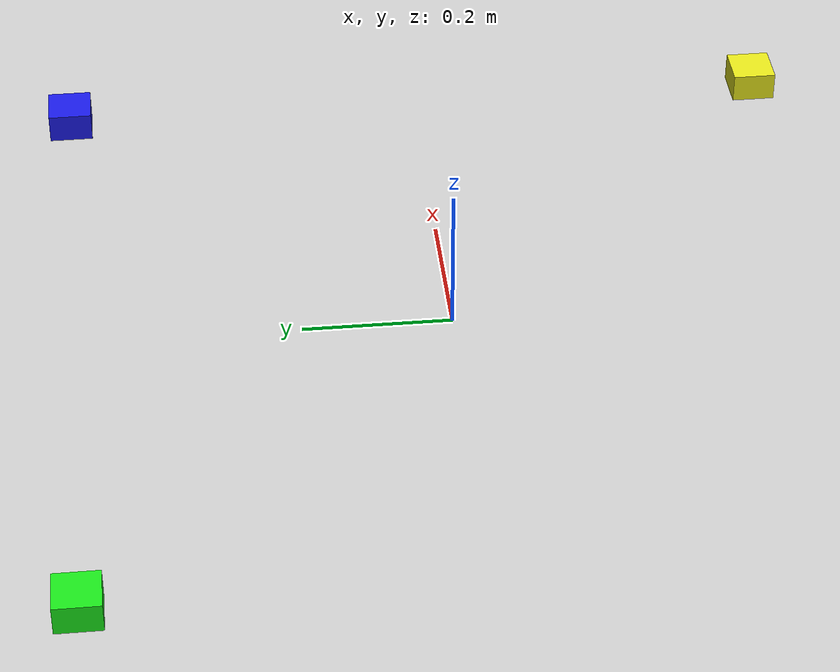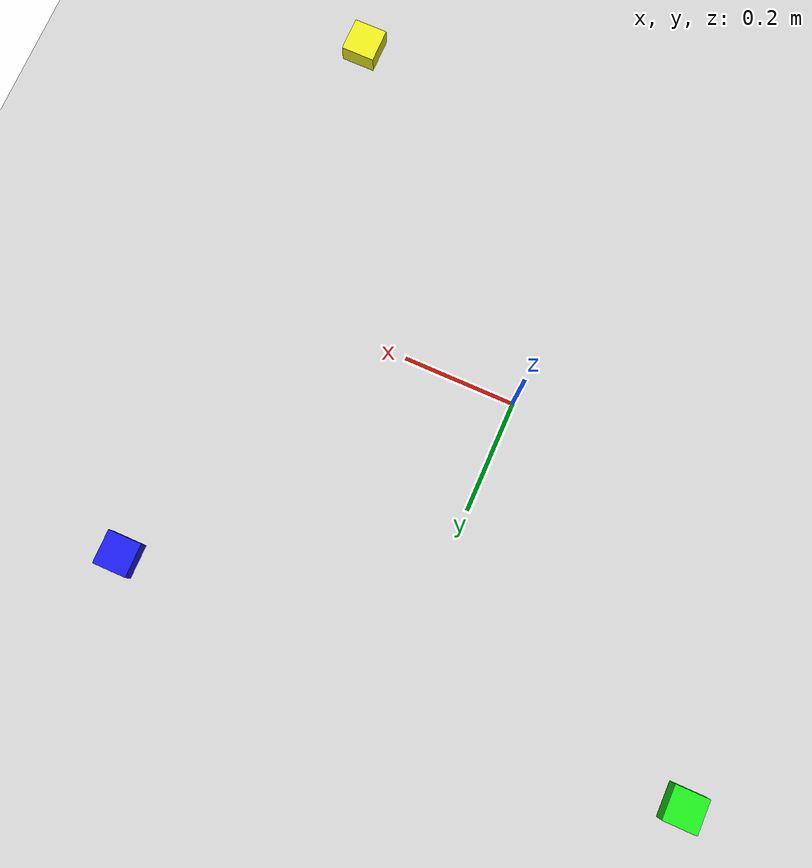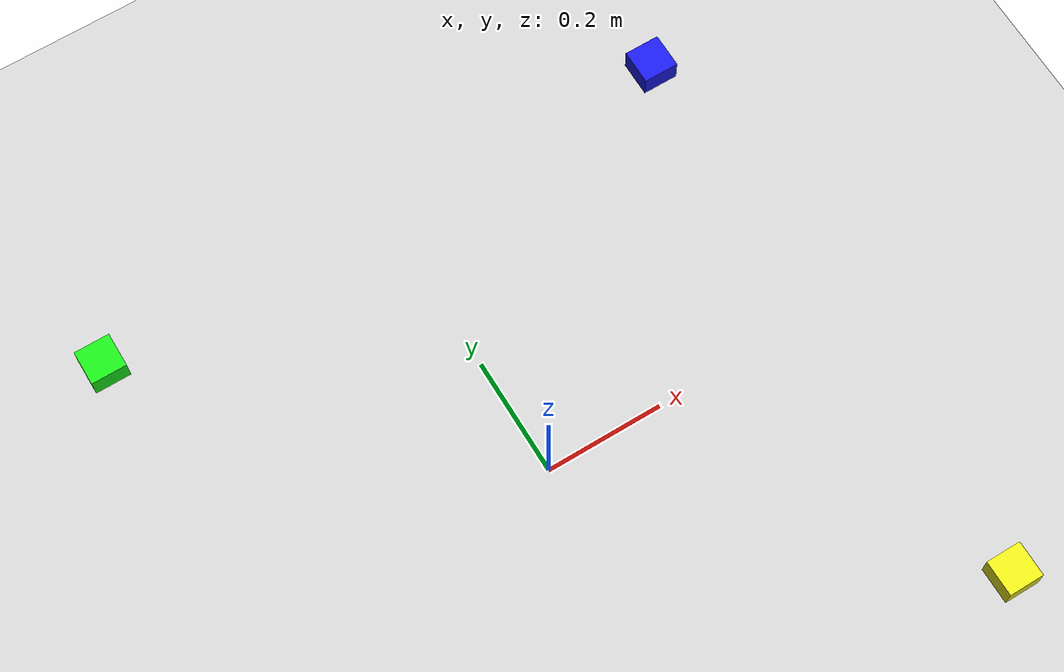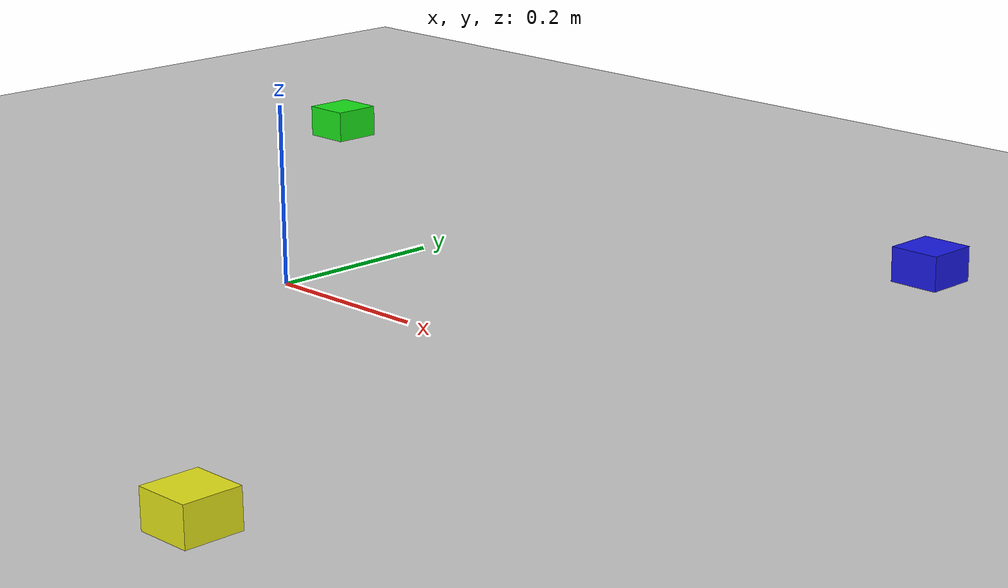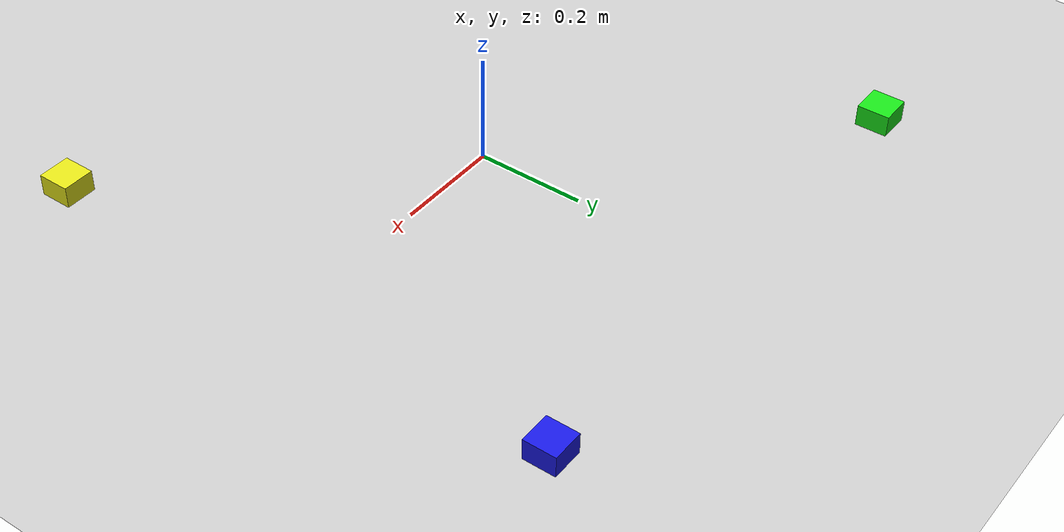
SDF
<?xml version="1.0" ?>
<sdf version="1.6">
  <world name="empty">
    <physics name="1ms" type="ignored">
      <max_step_size>0.001</max_step_size>
      <real_time_factor>1.0</real_time_factor>
    </physics>
    <plugin
      filename="gz-sim-physics-system"
      name="gz::sim::systems::Physics">
    </plugin>
    <plugin
      filename="gz-sim-user-commands-system"
      name="gz::sim::systems::UserCommands">
    </plugin>
    <plugin
      filename="gz-sim-scene-broadcaster-system"
      name="gz::sim::systems::SceneBroadcaster">
    </plugin>
    <plugin
      filename="gz-sim-contact-system"
      name="gz::sim::systems::Contact">
    </plugin>
    <plugin
      filename="gz-sim-sensors-system"
      name="gz::sim::systems::Sensors">
      <render_engine>ogre2</render_engine>
    </plugin>

    <light type="directional" name="sun">
      <cast_shadows>true</cast_shadows>
      <pose>0 0 10 0 0 0</pose>
      <diffuse>0.8 0.8 0.8 1</diffuse>
      <specular>0.2 0.2 0.2 1</specular>
      <attenuation>
        <range>1000</range>
        <constant>0.9</constant>
        <linear>0.01</linear>
        <quadratic>0.001</quadratic>
      </attenuation>
      <direction>-0.5 0.1 -0.9</direction>
    </light>

    <model name="ground_plane">
      <static>true</static>
      <link name="link">
        <collision name="collision">
          <geometry>
            <plane>
              <normal>0 0 1</normal>
              <size>100 100</size>
            </plane>
          </geometry>
        </collision>
        <visual name="visual">
          <geometry>
            <plane>
              <normal>0 0 1</normal>
              <size>100 100</size>
            </plane>
          </geometry>
          <material>
            <ambient>0.8 0.8 0.8 1</ambient>
            <diffuse>0.8 0.8 0.8 1</diffuse>
            <specular>0.8 0.8 0.8 1</specular>
          </material>
        </visual>
      </link>
    </model>

    <model name="calibration_marker_blue">
      <static>true</static>
      <pose>0.5 0.5 0.02 0 0 0</pose>
      <link name="link">
        <visual name="visual">
          <geometry>
            <box>
              <size>0.06 0.06 0.04</size>
            </box>
          </geometry>
          <material>
            <ambient>0.1 0.1 0.9 1</ambient>
            <diffuse>0.1 0.1 0.9 1</diffuse>
          </material>
        </visual>
        <collision name="collision">
          <geometry>
            <box>
              <size>0.06 0.06 0.04</size>
            </box>
          </geometry>
        </collision>
      </link>
    </model>

    <model name="calibration_marker_green">
      <static>true</static>
      <pose>-0.5 0.5 0.02 0 0 0</pose>
      <link name="link">
        <visual name="visual">
          <geometry>
            <box>
              <size>0.06 0.06 0.04</size>
            </box>
          </geometry>
          <material>
            <ambient>0.1 0.9 0.1 1</ambient>
            <diffuse>0.1 0.9 0.1 1</diffuse>
          </material>
        </visual>
        <collision name="collision">
          <geometry>
            <box>
              <size>0.06 0.06 0.04</size>
            </box>
          </geometry>
        </collision>
      </link>
    </model>

    <model name="calibration_marker_yellow">
      <static>true</static>
      <pose>0.5 -0.5 0.02 0 0 0</pose>
      <link name="link">
        <visual name="visual">
          <geometry>
            <box>
              <size>0.06 0.06 0.04</size>
            </box>
          </geometry>
          <material>
            <ambient>0.9 0.9 0.1 1</ambient>
            <diffuse>0.9 0.9 0.1 1</diffuse>
          </material>
        </visual>
        <collision name="collision">
          <geometry>
            <box>
              <size>0.06 0.06 0.04</size>
            </box>
          </geometry>
        </collision>
      </link>
    </model>

  </world>
</sdf>
